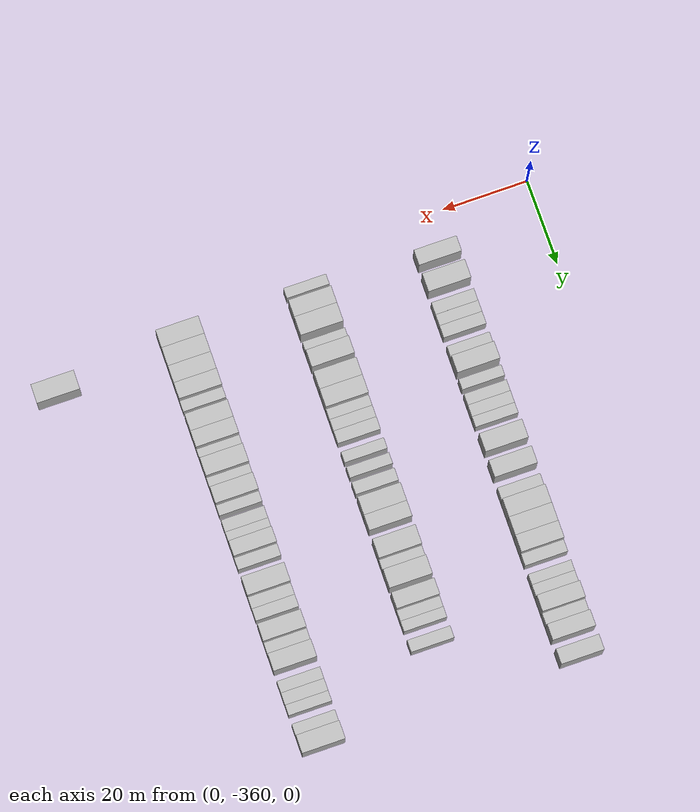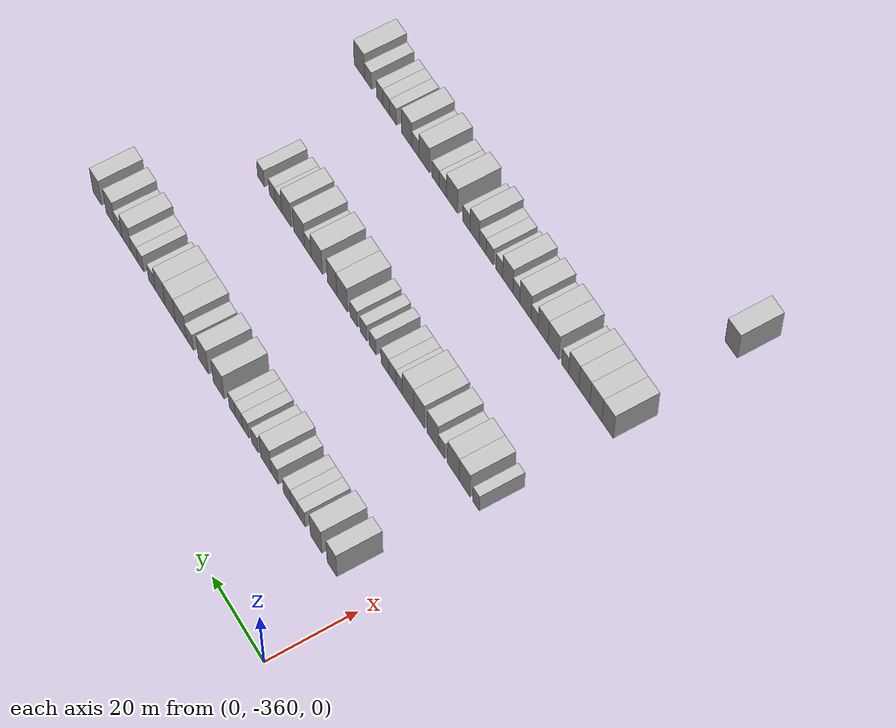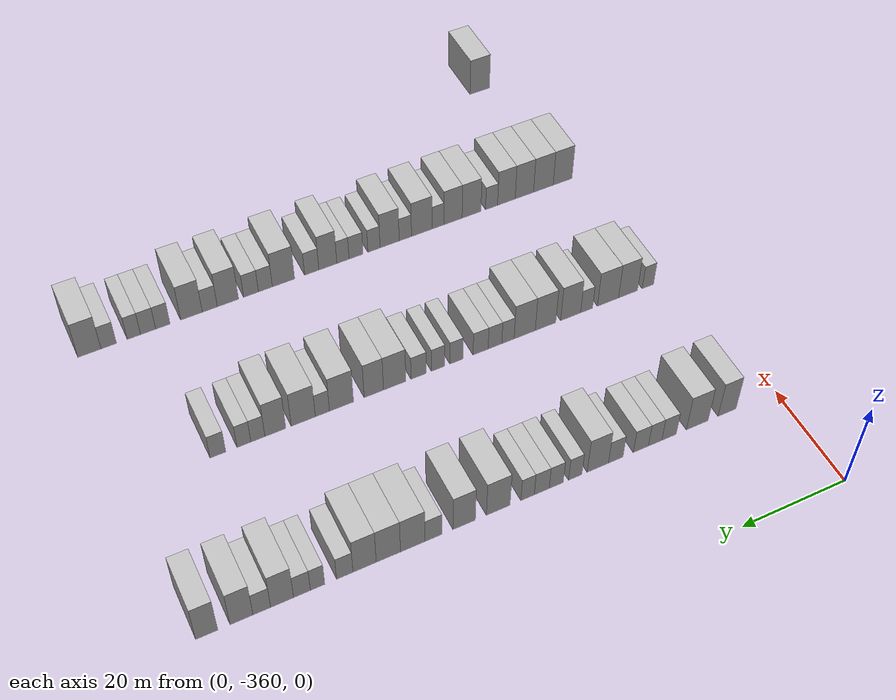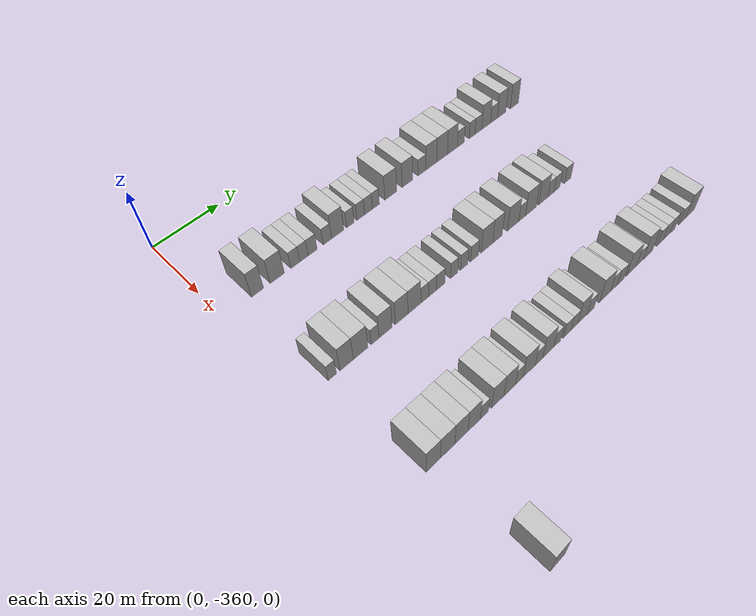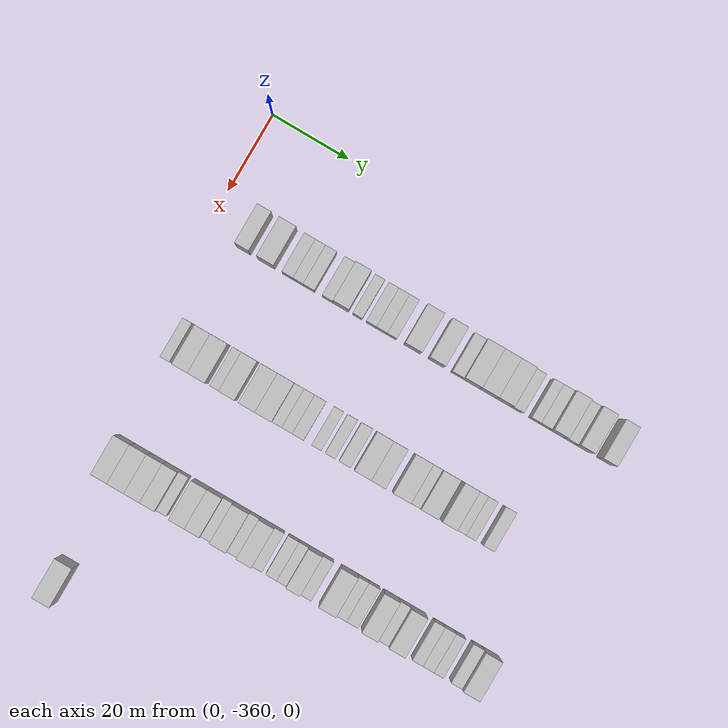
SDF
<sdf version="1.6">
 <world name="default">
  <model name="building_28">
   <static>1</static>
   <pose>25.0000 -350.0129 0 0.000000 0.000000 0.000000</pose>
   <link name="link">
    <pose>0 0 4.50 0 0 0</pose>
    <collision name="collision"><geometry><box><size>10.0000 3.6251 9.0000</size></box></geometry></collision>
    <visual name="visual">
     <cast_shadows>0</cast_shadows>
     <geometry><box><size>10.0000 3.6251 9.0000</size></box></geometry>
     <material>
      <script>
       <uri>model://HANNAS_wall/materials/scripts</uri>
       <uri>model://HANNAS_wall/materials/textures</uri>
       <name>vrc/HANNAS_wall</name>
      </script>
     </material>
    </visual>
   </link>
  </model>
  <model name="building_29">
   <static>1</static>
   <pose>25.0000 -344.0259 0 0.000000 0.000000 0.000000</pose>
   <link name="link">
    <pose>0 0 4.50 0 0 0</pose>
    <collision name="collision"><geometry><box><size>10.0000 4.3489 9.0000</size></box></geometry></collision>
    <visual name="visual">
     <cast_shadows>0</cast_shadows>
     <geometry><box><size>10.0000 4.3489 9.0000</size></box></geometry>
     <material>
      <script>
       <uri>model://HANNAS_wall/materials/scripts</uri>
       <uri>model://HANNAS_wall/materials/textures</uri>
       <name>vrc/HANNAS_wall</name>
      </script>
     </material>
    </visual>
   </link>
  </model>
  <model name="building_30">
   <static>1</static>
   <pose>25.0000 -338.4252 0 0.000000 0.000000 0.000000</pose>
   <link name="link">
    <pose>0 0 3.00 0 0 0</pose>
    <collision name="collision"><geometry><box><size>10.0000 2.8525 6.0000</size></box></geometry></collision>
    <visual name="visual">
     <cast_shadows>0</cast_shadows>
     <geometry><box><size>10.0000 2.8525 6.0000</size></box></geometry>
     <material>
      <script>
       <uri>model://HANNAS_wall/materials/scripts</uri>
       <uri>model://HANNAS_wall/materials/textures</uri>
       <name>vrc/HANNAS_wall</name>
      </script>
     </material>
    </visual>
   </link>
  </model>
  <model name="building_31">
   <static>1</static>
   <pose>25.0000 -335.6791 0 0.000000 0.000000 0.000000</pose>
   <link name="link">
    <pose>0 0 3.00 0 0 0</pose>
    <collision name="collision"><geometry><box><size>10.0000 2.6395 6.0000</size></box></geometry></collision>
    <visual name="visual">
     <cast_shadows>0</cast_shadows>
     <geometry><box><size>10.0000 2.6395 6.0000</size></box></geometry>
     <material>
      <script>
       <uri>model://HANNAS_wall/materials/scripts</uri>
       <uri>model://HANNAS_wall/materials/textures</uri>
       <name>vrc/HANNAS_wall</name>
      </script>
     </material>
    </visual>
   </link>
  </model>
  <model name="building_32">
   <static>1</static>
   <pose>25.0000 -332.9013 0 0.000000 0.000000 0.000000</pose>
   <link name="link">
    <pose>0 0 3.00 0 0 0</pose>
    <collision name="collision"><geometry><box><size>10.0000 2.9161 6.0000</size></box></geometry></collision>
    <visual name="visual">
     <cast_shadows>0</cast_shadows>
     <geometry><box><size>10.0000 2.9161 6.0000</size></box></geometry>
     <material>
      <script>
       <uri>model://HANNAS_wall/materials/scripts</uri>
       <uri>model://HANNAS_wall/materials/textures</uri>
       <name>vrc/HANNAS_wall</name>
      </script>
     </material>
    </visual>
   </link>
  </model>
  <model name="building_33">
   <static>1</static>
   <pose>25.0000 -328.0461 0 0.000000 0.000000 0.000000</pose>
   <link name="link">
    <pose>0 0 3.00 0 0 0</pose>
    <collision name="collision"><geometry><box><size>10.0000 2.7944 6.0000</size></box></geometry></collision>
    <visual name="visual">
     <cast_shadows>0</cast_shadows>
     <geometry><box><size>10.0000 2.7944 6.0000</size></box></geometry>
     <material>
      <script>
       <uri>model://HANNAS_wall/materials/scripts</uri>
       <uri>model://HANNAS_wall/materials/textures</uri>
       <name>vrc/HANNAS_wall</name>
      </script>
     </material>
    </visual>
   </link>
  </model>
  <model name="building_34">
   <static>1</static>
   <pose>25.0000 -324.6168 0 0.000000 0.000000 0.000000</pose>
   <link name="link">
    <pose>0 0 4.50 0 0 0</pose>
    <collision name="collision"><geometry><box><size>10.0000 4.0642 9.0000</size></box></geometry></collision>
    <visual name="visual">
     <cast_shadows>0</cast_shadows>
     <geometry><box><size>10.0000 4.0642 9.0000</size></box></geometry>
     <material>
      <script>
       <uri>model://HANNAS_wall/materials/scripts</uri>
       <uri>model://HANNAS_wall/materials/textures</uri>
       <name>vrc/HANNAS_wall</name>
      </script>
     </material>
    </visual>
   </link>
  </model>
  <model name="building_35">
   <static>1</static>
   <pose>25.0000 -320.3229 0 0.000000 0.000000 0.000000</pose>
   <link name="link">
    <pose>0 0 3.00 0 0 0</pose>
    <collision name="collision"><geometry><box><size>10.0000 2.5237 6.0000</size></box></geometry></collision>
    <visual name="visual">
     <cast_shadows>0</cast_shadows>
     <geometry><box><size>10.0000 2.5237 6.0000</size></box></geometry>
     <material>
      <script>
       <uri>model://HANNAS_wall/materials/scripts</uri>
       <uri>model://HANNAS_wall/materials/textures</uri>
       <name>vrc/HANNAS_wall</name>
      </script>
     </material>
    </visual>
   </link>
  </model>
  <model name="building_36">
   <static>1</static>
   <pose>25.0000 -316.7487 0 0.000000 0.000000 0.000000</pose>
   <link name="link">
    <pose>0 0 3.00 0 0 0</pose>
    <collision name="collision"><geometry><box><size>10.0000 2.6246 6.0000</size></box></geometry></collision>
    <visual name="visual">
     <cast_shadows>0</cast_shadows>
     <geometry><box><size>10.0000 2.6246 6.0000</size></box></geometry>
     <material>
      <script>
       <uri>model://HANNAS_wall/materials/scripts</uri>
       <uri>model://HANNAS_wall/materials/textures</uri>
       <name>vrc/HANNAS_wall</name>
      </script>
     </material>
    </visual>
   </link>
  </model>
  <model name="building_37">
   <static>1</static>
   <pose>25.0000 -314.0464 0 0.000000 0.000000 0.000000</pose>
   <link name="link">
    <pose>0 0 3.00 0 0 0</pose>
    <collision name="collision"><geometry><box><size>10.0000 2.7800 6.0000</size></box></geometry></collision>
    <visual name="visual">
     <cast_shadows>0</cast_shadows>
     <geometry><box><size>10.0000 2.7800 6.0000</size></box></geometry>
     <material>
      <script>
       <uri>model://HANNAS_wall/materials/scripts</uri>
       <uri>model://HANNAS_wall/materials/textures</uri>
       <name>vrc/HANNAS_wall</name>
      </script>
     </material>
    </visual>
   </link>
  </model>
  <model name="building_38">
   <static>1</static>
   <pose>25.0000 -311.4103 0 0.000000 0.000000 0.000000</pose>
   <link name="link">
    <pose>0 0 3.00 0 0 0</pose>
    <collision name="collision"><geometry><box><size>10.0000 2.4922 6.0000</size></box></geometry></collision>
    <visual name="visual">
     <cast_shadows>0</cast_shadows>
     <geometry><box><size>10.0000 2.4922 6.0000</size></box></geometry>
     <material>
      <script>
       <uri>model://HANNAS_wall/materials/scripts</uri>
       <uri>model://HANNAS_wall/materials/textures</uri>
       <name>vrc/HANNAS_wall</name>
      </script>
     </material>
    </visual>
   </link>
  </model>
  <model name="building_39">
   <static>1</static>
   <pose>25.0000 -306.0003 0 0.000000 0.000000 0.000000</pose>
   <link name="link">
    <pose>0 0 4.50 0 0 0</pose>
    <collision name="collision"><geometry><box><size>10.0000 4.3278 9.0000</size></box></geometry></collision>
    <visual name="visual">
     <cast_shadows>0</cast_shadows>
     <geometry><box><size>10.0000 4.3278 9.0000</size></box></geometry>
     <material>
      <script>
       <uri>model://HANNAS_wall/materials/scripts</uri>
       <uri>model://HANNAS_wall/materials/textures</uri>
       <name>vrc/HANNAS_wall</name>
      </script>
     </material>
    </visual>
   </link>
  </model>
  <model name="building_40">
   <static>1</static>
   <pose>25.0000 -299.8229 0 0.000000 0.000000 0.000000</pose>
   <link name="link">
    <pose>0 0 4.50 0 0 0</pose>
    <collision name="collision"><geometry><box><size>10.0000 4.0270 9.0000</size></box></geometry></collision>
    <visual name="visual">
     <cast_shadows>0</cast_shadows>
     <geometry><box><size>10.0000 4.0270 9.0000</size></box></geometry>
     <material>
      <script>
       <uri>model://HANNAS_wall/materials/scripts</uri>
       <uri>model://HANNAS_wall/materials/textures</uri>
       <name>vrc/HANNAS_wall</name>
      </script>
     </material>
    </visual>
   </link>
  </model>
  <model name="building_41">
   <static>1</static>
   <pose>25.0000 -294.3111 0 0.000000 0.000000 0.000000</pose>
   <link name="link">
    <pose>0 0 3.00 0 0 0</pose>
    <collision name="collision"><geometry><box><size>10.0000 2.9968 6.0000</size></box></geometry></collision>
    <visual name="visual">
     <cast_shadows>0</cast_shadows>
     <geometry><box><size>10.0000 2.9968 6.0000</size></box></geometry>
     <material>
      <script>
       <uri>model://HANNAS_wall/materials/scripts</uri>
       <uri>model://HANNAS_wall/materials/textures</uri>
       <name>vrc/HANNAS_wall</name>
      </script>
     </material>
    </visual>
   </link>
  </model>
  <model name="building_42">
   <static>1</static>
   <pose>25.0000 -290.6540 0 0.000000 0.000000 0.000000</pose>
   <link name="link">
    <pose>0 0 4.50 0 0 0</pose>
    <collision name="collision"><geometry><box><size>10.0000 4.3174 9.0000</size></box></geometry></collision>
    <visual name="visual">
     <cast_shadows>0</cast_shadows>
     <geometry><box><size>10.0000 4.3174 9.0000</size></box></geometry>
     <material>
      <script>
       <uri>model://HANNAS_wall/materials/scripts</uri>
       <uri>model://HANNAS_wall/materials/textures</uri>
       <name>vrc/HANNAS_wall</name>
      </script>
     </material>
    </visual>
   </link>
  </model>
  <model name="building_43">
   <static>1</static>
   <pose>25.0000 -286.3703 0 0.000000 0.000000 0.000000</pose>
   <link name="link">
    <pose>0 0 4.50 0 0 0</pose>
    <collision name="collision"><geometry><box><size>10.0000 4.2500 9.0000</size></box></geometry></collision>
    <visual name="visual">
     <cast_shadows>0</cast_shadows>
     <geometry><box><size>10.0000 4.2500 9.0000</size></box></geometry>
     <material>
      <script>
       <uri>model://HANNAS_wall/materials/scripts</uri>
       <uri>model://HANNAS_wall/materials/textures</uri>
       <name>vrc/HANNAS_wall</name>
      </script>
     </material>
    </visual>
   </link>
  </model>
  <model name="building_44">
   <static>1</static>
   <pose>25.0000 -282.2408 0 0.000000 0.000000 0.000000</pose>
   <link name="link">
    <pose>0 0 4.50 0 0 0</pose>
    <collision name="collision"><geometry><box><size>10.0000 4.0090 9.0000</size></box></geometry></collision>
    <visual name="visual">
     <cast_shadows>0</cast_shadows>
     <geometry><box><size>10.0000 4.0090 9.0000</size></box></geometry>
     <material>
      <script>
       <uri>model://HANNAS_wall/materials/scripts</uri>
       <uri>model://HANNAS_wall/materials/textures</uri>
       <name>vrc/HANNAS_wall</name>
      </script>
     </material>
    </visual>
   </link>
  </model>
  <model name="building_45">
   <static>1</static>
   <pose>25.0000 -278.8270 0 0.000000 0.000000 0.000000</pose>
   <link name="link">
    <pose>0 0 3.00 0 0 0</pose>
    <collision name="collision"><geometry><box><size>10.0000 2.8187 6.0000</size></box></geometry></collision>
    <visual name="visual">
     <cast_shadows>0</cast_shadows>
     <geometry><box><size>10.0000 2.8187 6.0000</size></box></geometry>
     <material>
      <script>
       <uri>model://HANNAS_wall/materials/scripts</uri>
       <uri>model://HANNAS_wall/materials/textures</uri>
       <name>vrc/HANNAS_wall</name>
      </script>
     </material>
    </visual>
   </link>
  </model>
  <model name="building_46">
   <static>1</static>
   <pose>25.0000 -274.2003 0 0.000000 0.000000 0.000000</pose>
   <link name="link">
    <pose>0 0 3.00 0 0 0</pose>
    <collision name="collision"><geometry><box><size>10.0000 2.4347 6.0000</size></box></geometry></collision>
    <visual name="visual">
     <cast_shadows>0</cast_shadows>
     <geometry><box><size>10.0000 2.4347 6.0000</size></box></geometry>
     <material>
      <script>
       <uri>model://HANNAS_wall/materials/scripts</uri>
       <uri>model://HANNAS_wall/materials/textures</uri>
       <name>vrc/HANNAS_wall</name>
      </script>
     </material>
    </visual>
   </link>
  </model>
  <model name="building_47">
   <static>1</static>
   <pose>25.0000 -271.5685 0 0.000000 0.000000 0.000000</pose>
   <link name="link">
    <pose>0 0 3.00 0 0 0</pose>
    <collision name="collision"><geometry><box><size>10.0000 2.8289 6.0000</size></box></geometry></collision>
    <visual name="visual">
     <cast_shadows>0</cast_shadows>
     <geometry><box><size>10.0000 2.8289 6.0000</size></box></geometry>
     <material>
      <script>
       <uri>model://HANNAS_wall/materials/scripts</uri>
       <uri>model://HANNAS_wall/materials/textures</uri>
       <name>vrc/HANNAS_wall</name>
      </script>
     </material>
    </visual>
   </link>
  </model>
  <model name="building_48">
   <static>1</static>
   <pose>25.0000 -268.2330 0 0.000000 0.000000 0.000000</pose>
   <link name="link">
    <pose>0 0 4.50 0 0 0</pose>
    <collision name="collision"><geometry><box><size>10.0000 3.8420 9.0000</size></box></geometry></collision>
    <visual name="visual">
     <cast_shadows>0</cast_shadows>
     <geometry><box><size>10.0000 3.8420 9.0000</size></box></geometry>
     <material>
      <script>
       <uri>model://HANNAS_wall/materials/scripts</uri>
       <uri>model://HANNAS_wall/materials/textures</uri>
       <name>vrc/HANNAS_wall</name>
      </script>
     </material>
    </visual>
   </link>
  </model>
  <model name="building_49">
   <static>1</static>
   <pose>25.0000 -264.8440 0 0.000000 0.000000 0.000000</pose>
   <link name="link">
    <pose>0 0 3.00 0 0 0</pose>
    <collision name="collision"><geometry><box><size>10.0000 2.9360 6.0000</size></box></geometry></collision>
    <visual name="visual">
     <cast_shadows>0</cast_shadows>
     <geometry><box><size>10.0000 2.9360 6.0000</size></box></geometry>
     <material>
      <script>
       <uri>model://HANNAS_wall/materials/scripts</uri>
       <uri>model://HANNAS_wall/materials/textures</uri>
       <name>vrc/HANNAS_wall</name>
      </script>
     </material>
    </visual>
   </link>
  </model>
  <model name="building_50">
   <static>1</static>
   <pose>25.0000 -261.4907 0 0.000000 0.000000 0.000000</pose>
   <link name="link">
    <pose>0 0 4.50 0 0 0</pose>
    <collision name="collision"><geometry><box><size>10.0000 3.7706 9.0000</size></box></geometry></collision>
    <visual name="visual">
     <cast_shadows>0</cast_shadows>
     <geometry><box><size>10.0000 3.7706 9.0000</size></box></geometry>
     <material>
      <script>
       <uri>model://HANNAS_wall/materials/scripts</uri>
       <uri>model://HANNAS_wall/materials/textures</uri>
       <name>vrc/HANNAS_wall</name>
      </script>
     </material>
    </visual>
   </link>
  </model>
  <model name="building_51">
   <static>1</static>
   <pose>25.0000 -255.8040 0 0.000000 0.000000 0.000000</pose>
   <link name="link">
    <pose>0 0 4.50 0 0 0</pose>
    <collision name="collision"><geometry><box><size>10.0000 3.6027 9.0000</size></box></geometry></collision>
    <visual name="visual">
     <cast_shadows>0</cast_shadows>
     <geometry><box><size>10.0000 3.6027 9.0000</size></box></geometry>
     <material>
      <script>
       <uri>model://HANNAS_wall/materials/scripts</uri>
       <uri>model://HANNAS_wall/materials/textures</uri>
       <name>vrc/HANNAS_wall</name>
      </script>
     </material>
    </visual>
   </link>
  </model>
  <model name="building_248">
   <static>1</static>
   <pose>55.0000 -352.4674 0 0.000000 0.000000 0.000000</pose>
   <link name="link">
    <pose>0 0 3.00 0 0 0</pose>
    <collision name="collision"><geometry><box><size>10.0000 2.4110 6.0000</size></box></geometry></collision>
    <visual name="visual">
     <cast_shadows>0</cast_shadows>
     <geometry><box><size>10.0000 2.4110 6.0000</size></box></geometry>
     <material>
      <script>
       <uri>model://HANNAS_wall/materials/scripts</uri>
       <uri>model://HANNAS_wall/materials/textures</uri>
       <name>vrc/HANNAS_wall</name>
      </script>
     </material>
    </visual>
   </link>
  </model>
  <model name="building_249">
   <static>1</static>
   <pose>55.0000 -348.2635 0 0.000000 0.000000 0.000000</pose>
   <link name="link">
    <pose>0 0 4.50 0 0 0</pose>
    <collision name="collision"><geometry><box><size>10.0000 3.9969 9.0000</size></box></geometry></collision>
    <visual name="visual">
     <cast_shadows>0</cast_shadows>
     <geometry><box><size>10.0000 3.9969 9.0000</size></box></geometry>
     <material>
      <script>
       <uri>model://HANNAS_wall/materials/scripts</uri>
       <uri>model://HANNAS_wall/materials/textures</uri>
       <name>vrc/HANNAS_wall</name>
      </script>
     </material>
    </visual>
   </link>
  </model>
  <model name="building_250">
   <static>1</static>
   <pose>55.0000 -344.0564 0 0.000000 0.000000 0.000000</pose>
   <link name="link">
    <pose>0 0 4.50 0 0 0</pose>
    <collision name="collision"><geometry><box><size>10.0000 4.4171 9.0000</size></box></geometry></collision>
    <visual name="visual">
     <cast_shadows>0</cast_shadows>
     <geometry><box><size>10.0000 4.4171 9.0000</size></box></geometry>
     <material>
      <script>
       <uri>model://HANNAS_wall/materials/scripts</uri>
       <uri>model://HANNAS_wall/materials/textures</uri>
       <name>vrc/HANNAS_wall</name>
      </script>
     </material>
    </visual>
   </link>
  </model>
  <model name="building_251">
   <static>1</static>
   <pose>55.0000 -339.6115 0 0.000000 0.000000 0.000000</pose>
   <link name="link">
    <pose>0 0 3.00 0 0 0</pose>
    <collision name="collision"><geometry><box><size>10.0000 2.4727 6.0000</size></box></geometry></collision>
    <visual name="visual">
     <cast_shadows>0</cast_shadows>
     <geometry><box><size>10.0000 2.4727 6.0000</size></box></geometry>
     <material>
      <script>
       <uri>model://HANNAS_wall/materials/scripts</uri>
       <uri>model://HANNAS_wall/materials/textures</uri>
       <name>vrc/HANNAS_wall</name>
      </script>
     </material>
    </visual>
   </link>
  </model>
  <model name="building_252">
   <static>1</static>
   <pose>55.0000 -336.3242 0 0.000000 0.000000 0.000000</pose>
   <link name="link">
    <pose>0 0 4.50 0 0 0</pose>
    <collision name="collision"><geometry><box><size>10.0000 4.1019 9.0000</size></box></geometry></collision>
    <visual name="visual">
     <cast_shadows>0</cast_shadows>
     <geometry><box><size>10.0000 4.1019 9.0000</size></box></geometry>
     <material>
      <script>
       <uri>model://HANNAS_wall/materials/scripts</uri>
       <uri>model://HANNAS_wall/materials/textures</uri>
       <name>vrc/HANNAS_wall</name>
      </script>
     </material>
    </visual>
   </link>
  </model>
  <model name="building_253">
   <static>1</static>
   <pose>55.0000 -331.1877 0 0.000000 0.000000 0.000000</pose>
   <link name="link">
    <pose>0 0 4.50 0 0 0</pose>
    <collision name="collision"><geometry><box><size>10.0000 4.1712 9.0000</size></box></geometry></collision>
    <visual name="visual">
     <cast_shadows>0</cast_shadows>
     <geometry><box><size>10.0000 4.1712 9.0000</size></box></geometry>
     <material>
      <script>
       <uri>model://HANNAS_wall/materials/scripts</uri>
       <uri>model://HANNAS_wall/materials/textures</uri>
       <name>vrc/HANNAS_wall</name>
      </script>
     </material>
    </visual>
   </link>
  </model>
  <model name="building_254">
   <static>1</static>
   <pose>55.0000 -326.9685 0 0.000000 0.000000 0.000000</pose>
   <link name="link">
    <pose>0 0 4.50 0 0 0</pose>
    <collision name="collision"><geometry><box><size>10.0000 4.2670 9.0000</size></box></geometry></collision>
    <visual name="visual">
     <cast_shadows>0</cast_shadows>
     <geometry><box><size>10.0000 4.2670 9.0000</size></box></geometry>
     <material>
      <script>
       <uri>model://HANNAS_wall/materials/scripts</uri>
       <uri>model://HANNAS_wall/materials/textures</uri>
       <name>vrc/HANNAS_wall</name>
      </script>
     </material>
    </visual>
   </link>
  </model>
  <model name="building_255">
   <static>1</static>
   <pose>55.0000 -323.6012 0 0.000000 0.000000 0.000000</pose>
   <link name="link">
    <pose>0 0 3.00 0 0 0</pose>
    <collision name="collision"><geometry><box><size>10.0000 2.4678 6.0000</size></box></geometry></collision>
    <visual name="visual">
     <cast_shadows>0</cast_shadows>
     <geometry><box><size>10.0000 2.4678 6.0000</size></box></geometry>
     <material>
      <script>
       <uri>model://HANNAS_wall/materials/scripts</uri>
       <uri>model://HANNAS_wall/materials/textures</uri>
       <name>vrc/HANNAS_wall</name>
      </script>
     </material>
    </visual>
   </link>
  </model>
  <model name="building_256">
   <static>1</static>
   <pose>55.0000 -321.0097 0 0.000000 0.000000 0.000000</pose>
   <link name="link">
    <pose>0 0 3.00 0 0 0</pose>
    <collision name="collision"><geometry><box><size>10.0000 2.7152 6.0000</size></box></geometry></collision>
    <visual name="visual">
     <cast_shadows>0</cast_shadows>
     <geometry><box><size>10.0000 2.7152 6.0000</size></box></geometry>
     <material>
      <script>
       <uri>model://HANNAS_wall/materials/scripts</uri>
       <uri>model://HANNAS_wall/materials/textures</uri>
       <name>vrc/HANNAS_wall</name>
      </script>
     </material>
    </visual>
   </link>
  </model>
  <model name="building_257">
   <static>1</static>
   <pose>55.0000 -318.1588 0 0.000000 0.000000 0.000000</pose>
   <link name="link">
    <pose>0 0 3.00 0 0 0</pose>
    <collision name="collision"><geometry><box><size>10.0000 2.9866 6.0000</size></box></geometry></collision>
    <visual name="visual">
     <cast_shadows>0</cast_shadows>
     <geometry><box><size>10.0000 2.9866 6.0000</size></box></geometry>
     <material>
      <script>
       <uri>model://HANNAS_wall/materials/scripts</uri>
       <uri>model://HANNAS_wall/materials/textures</uri>
       <name>vrc/HANNAS_wall</name>
      </script>
     </material>
    </visual>
   </link>
  </model>
  <model name="building_258">
   <static>1</static>
   <pose>55.0000 -313.3982 0 0.000000 0.000000 0.000000</pose>
   <link name="link">
    <pose>0 0 3.00 0 0 0</pose>
    <collision name="collision"><geometry><box><size>10.0000 2.5346 6.0000</size></box></geometry></collision>
    <visual name="visual">
     <cast_shadows>0</cast_shadows>
     <geometry><box><size>10.0000 2.5346 6.0000</size></box></geometry>
     <material>
      <script>
       <uri>model://HANNAS_wall/materials/scripts</uri>
       <uri>model://HANNAS_wall/materials/textures</uri>
       <name>vrc/HANNAS_wall</name>
      </script>
     </material>
    </visual>
   </link>
  </model>
  <model name="building_259">
   <static>1</static>
   <pose>55.0000 -309.8338 0 0.000000 0.000000 0.000000</pose>
   <link name="link">
    <pose>0 0 3.00 0 0 0</pose>
    <collision name="collision"><geometry><box><size>10.0000 2.5942 6.0000</size></box></geometry></collision>
    <visual name="visual">
     <cast_shadows>0</cast_shadows>
     <geometry><box><size>10.0000 2.5942 6.0000</size></box></geometry>
     <material>
      <script>
       <uri>model://HANNAS_wall/materials/scripts</uri>
       <uri>model://HANNAS_wall/materials/textures</uri>
       <name>vrc/HANNAS_wall</name>
      </script>
     </material>
    </visual>
   </link>
  </model>
  <model name="building_260">
   <static>1</static>
   <pose>55.0000 -306.0665 0 0.000000 0.000000 0.000000</pose>
   <link name="link">
    <pose>0 0 3.00 0 0 0</pose>
    <collision name="collision"><geometry><box><size>10.0000 2.9404 6.0000</size></box></geometry></collision>
    <visual name="visual">
     <cast_shadows>0</cast_shadows>
     <geometry><box><size>10.0000 2.9404 6.0000</size></box></geometry>
     <material>
      <script>
       <uri>model://HANNAS_wall/materials/scripts</uri>
       <uri>model://HANNAS_wall/materials/textures</uri>
       <name>vrc/HANNAS_wall</name>
      </script>
     </material>
    </visual>
   </link>
  </model>
  <model name="building_261">
   <static>1</static>
   <pose>55.0000 -301.4670 0 0.000000 0.000000 0.000000</pose>
   <link name="link">
    <pose>0 0 4.50 0 0 0</pose>
    <collision name="collision"><geometry><box><size>10.0000 4.2585 9.0000</size></box></geometry></collision>
    <visual name="visual">
     <cast_shadows>0</cast_shadows>
     <geometry><box><size>10.0000 4.2585 9.0000</size></box></geometry>
     <material>
      <script>
       <uri>model://HANNAS_wall/materials/scripts</uri>
       <uri>model://HANNAS_wall/materials/textures</uri>
       <name>vrc/HANNAS_wall</name>
      </script>
     </material>
    </visual>
   </link>
  </model>
  <model name="building_262">
   <static>1</static>
   <pose>55.0000 -297.5092 0 0.000000 0.000000 0.000000</pose>
   <link name="link">
    <pose>0 0 4.50 0 0 0</pose>
    <collision name="collision"><geometry><box><size>10.0000 3.6571 9.0000</size></box></geometry></collision>
    <visual name="visual">
     <cast_shadows>0</cast_shadows>
     <geometry><box><size>10.0000 3.6571 9.0000</size></box></geometry>
     <material>
      <script>
       <uri>model://HANNAS_wall/materials/scripts</uri>
       <uri>model://HANNAS_wall/materials/textures</uri>
       <name>vrc/HANNAS_wall</name>
      </script>
     </material>
    </visual>
   </link>
  </model>
  <model name="building_263">
   <static>1</static>
   <pose>55.0000 -291.4414 0 0.000000 0.000000 0.000000</pose>
   <link name="link">
    <pose>0 0 4.50 0 0 0</pose>
    <collision name="collision"><geometry><box><size>10.0000 4.4786 9.0000</size></box></geometry></collision>
    <visual name="visual">
     <cast_shadows>0</cast_shadows>
     <geometry><box><size>10.0000 4.4786 9.0000</size></box></geometry>
     <material>
      <script>
       <uri>model://HANNAS_wall/materials/scripts</uri>
       <uri>model://HANNAS_wall/materials/textures</uri>
       <name>vrc/HANNAS_wall</name>
      </script>
     </material>
    </visual>
   </link>
  </model>
  <model name="building_264">
   <static>1</static>
   <pose>55.0000 -287.8946 0 0.000000 0.000000 0.000000</pose>
   <link name="link">
    <pose>0 0 3.00 0 0 0</pose>
    <collision name="collision"><geometry><box><size>10.0000 2.6149 6.0000</size></box></geometry></collision>
    <visual name="visual">
     <cast_shadows>0</cast_shadows>
     <geometry><box><size>10.0000 2.6149 6.0000</size></box></geometry>
     <material>
      <script>
       <uri>model://HANNAS_wall/materials/scripts</uri>
       <uri>model://HANNAS_wall/materials/textures</uri>
       <name>vrc/HANNAS_wall</name>
      </script>
     </material>
    </visual>
   </link>
  </model>
  <model name="building_265">
   <static>1</static>
   <pose>55.0000 -284.3714 0 0.000000 0.000000 0.000000</pose>
   <link name="link">
    <pose>0 0 4.50 0 0 0</pose>
    <collision name="collision"><geometry><box><size>10.0000 4.4314 9.0000</size></box></geometry></collision>
    <visual name="visual">
     <cast_shadows>0</cast_shadows>
     <geometry><box><size>10.0000 4.4314 9.0000</size></box></geometry>
     <material>
      <script>
       <uri>model://HANNAS_wall/materials/scripts</uri>
       <uri>model://HANNAS_wall/materials/textures</uri>
       <name>vrc/HANNAS_wall</name>
      </script>
     </material>
    </visual>
   </link>
  </model>
  <model name="building_266">
   <static>1</static>
   <pose>55.0000 -279.2587 0 0.000000 0.000000 0.000000</pose>
   <link name="link">
    <pose>0 0 4.50 0 0 0</pose>
    <collision name="collision"><geometry><box><size>10.0000 3.7939 9.0000</size></box></geometry></collision>
    <visual name="visual">
     <cast_shadows>0</cast_shadows>
     <geometry><box><size>10.0000 3.7939 9.0000</size></box></geometry>
     <material>
      <script>
       <uri>model://HANNAS_wall/materials/scripts</uri>
       <uri>model://HANNAS_wall/materials/textures</uri>
       <name>vrc/HANNAS_wall</name>
      </script>
     </material>
    </visual>
   </link>
  </model>
  <model name="building_267">
   <static>1</static>
   <pose>55.0000 -276.0948 0 0.000000 0.000000 0.000000</pose>
   <link name="link">
    <pose>0 0 3.00 0 0 0</pose>
    <collision name="collision"><geometry><box><size>10.0000 2.5339 6.0000</size></box></geometry></collision>
    <visual name="visual">
     <cast_shadows>0</cast_shadows>
     <geometry><box><size>10.0000 2.5339 6.0000</size></box></geometry>
     <material>
      <script>
       <uri>model://HANNAS_wall/materials/scripts</uri>
       <uri>model://HANNAS_wall/materials/textures</uri>
       <name>vrc/HANNAS_wall</name>
      </script>
     </material>
    </visual>
   </link>
  </model>
  <model name="building_268">
   <static>1</static>
   <pose>55.0000 -273.5876 0 0.000000 0.000000 0.000000</pose>
   <link name="link">
    <pose>0 0 3.00 0 0 0</pose>
    <collision name="collision"><geometry><box><size>10.0000 2.4806 6.0000</size></box></geometry></collision>
    <visual name="visual">
     <cast_shadows>0</cast_shadows>
     <geometry><box><size>10.0000 2.4806 6.0000</size></box></geometry>
     <material>
      <script>
       <uri>model://HANNAS_wall/materials/scripts</uri>
       <uri>model://HANNAS_wall/materials/textures</uri>
       <name>vrc/HANNAS_wall</name>
      </script>
     </material>
    </visual>
   </link>
  </model>
  <model name="building_269">
   <static>1</static>
   <pose>55.0000 -268.9467 0 0.000000 0.000000 0.000000</pose>
   <link name="link">
    <pose>0 0 3.00 0 0 0</pose>
    <collision name="collision"><geometry><box><size>10.0000 2.8012 6.0000</size></box></geometry></collision>
    <visual name="visual">
     <cast_shadows>0</cast_shadows>
     <geometry><box><size>10.0000 2.8012 6.0000</size></box></geometry>
     <material>
      <script>
       <uri>model://HANNAS_wall/materials/scripts</uri>
       <uri>model://HANNAS_wall/materials/textures</uri>
       <name>vrc/HANNAS_wall</name>
      </script>
     </material>
    </visual>
   </link>
  </model>
  <model name="building_464">
   <static>1</static>
   <pose>85.0000 -351.3925 0 0.000000 0.000000 0.000000</pose>
   <link name="link">
    <pose>0 0 4.50 0 0 0</pose>
    <collision name="collision"><geometry><box><size>10.0000 4.1527 9.0000</size></box></geometry></collision>
    <visual name="visual">
     <cast_shadows>0</cast_shadows>
     <geometry><box><size>10.0000 4.1527 9.0000</size></box></geometry>
     <material>
      <script>
       <uri>model://HANNAS_wall/materials/scripts</uri>
       <uri>model://HANNAS_wall/materials/textures</uri>
       <name>vrc/HANNAS_wall</name>
      </script>
     </material>
    </visual>
   </link>
  </model>
  <model name="building_465">
   <static>1</static>
   <pose>85.0000 -347.1531 0 0.000000 0.000000 0.000000</pose>
   <link name="link">
    <pose>0 0 4.50 0 0 0</pose>
    <collision name="collision"><geometry><box><size>10.0000 4.3261 9.0000</size></box></geometry></collision>
    <visual name="visual">
     <cast_shadows>0</cast_shadows>
     <geometry><box><size>10.0000 4.3261 9.0000</size></box></geometry>
     <material>
      <script>
       <uri>model://HANNAS_wall/materials/scripts</uri>
       <uri>model://HANNAS_wall/materials/textures</uri>
       <name>vrc/HANNAS_wall</name>
      </script>
     </material>
    </visual>
   </link>
  </model>
  <model name="building_466">
   <static>1</static>
   <pose>85.0000 -342.9874 0 0.000000 0.000000 0.000000</pose>
   <link name="link">
    <pose>0 0 4.50 0 0 0</pose>
    <collision name="collision"><geometry><box><size>10.0000 4.0052 9.0000</size></box></geometry></collision>
    <visual name="visual">
     <cast_shadows>0</cast_shadows>
     <geometry><box><size>10.0000 4.0052 9.0000</size></box></geometry>
     <material>
      <script>
       <uri>model://HANNAS_wall/materials/scripts</uri>
       <uri>model://HANNAS_wall/materials/textures</uri>
       <name>vrc/HANNAS_wall</name>
      </script>
     </material>
    </visual>
   </link>
  </model>
  <model name="building_467">
   <static>1</static>
   <pose>85.0000 -339.0748 0 0.000000 0.000000 0.000000</pose>
   <link name="link">
    <pose>0 0 4.50 0 0 0</pose>
    <collision name="collision"><geometry><box><size>10.0000 3.8201 9.0000</size></box></geometry></collision>
    <visual name="visual">
     <cast_shadows>0</cast_shadows>
     <geometry><box><size>10.0000 3.8201 9.0000</size></box></geometry>
     <material>
      <script>
       <uri>model://HANNAS_wall/materials/scripts</uri>
       <uri>model://HANNAS_wall/materials/textures</uri>
       <name>vrc/HANNAS_wall</name>
      </script>
     </material>
    </visual>
   </link>
  </model>
  <model name="building_468">
   <static>1</static>
   <pose>85.0000 -335.8769 0 0.000000 0.000000 0.000000</pose>
   <link name="link">
    <pose>0 0 3.00 0 0 0</pose>
    <collision name="collision"><geometry><box><size>10.0000 2.5756 6.0000</size></box></geometry></collision>
    <visual name="visual">
     <cast_shadows>0</cast_shadows>
     <geometry><box><size>10.0000 2.5756 6.0000</size></box></geometry>
     <material>
      <script>
       <uri>model://HANNAS_wall/materials/scripts</uri>
       <uri>model://HANNAS_wall/materials/textures</uri>
       <name>vrc/HANNAS_wall</name>
      </script>
     </material>
    </visual>
   </link>
  </model>
  <model name="building_469">
   <static>1</static>
   <pose>85.0000 -331.5856 0 0.000000 0.000000 0.000000</pose>
   <link name="link">
    <pose>0 0 4.50 0 0 0</pose>
    <collision name="collision"><geometry><box><size>10.0000 4.0070 9.0000</size></box></geometry></collision>
    <visual name="visual">
     <cast_shadows>0</cast_shadows>
     <geometry><box><size>10.0000 4.0070 9.0000</size></box></geometry>
     <material>
      <script>
       <uri>model://HANNAS_wall/materials/scripts</uri>
       <uri>model://HANNAS_wall/materials/textures</uri>
       <name>vrc/HANNAS_wall</name>
      </script>
     </material>
    </visual>
   </link>
  </model>
  <model name="building_470">
   <static>1</static>
   <pose>85.0000 -327.6525 0 0.000000 0.000000 0.000000</pose>
   <link name="link">
    <pose>0 0 4.50 0 0 0</pose>
    <collision name="collision"><geometry><box><size>10.0000 3.8591 9.0000</size></box></geometry></collision>
    <visual name="visual">
     <cast_shadows>0</cast_shadows>
     <geometry><box><size>10.0000 3.8591 9.0000</size></box></geometry>
     <material>
      <script>
       <uri>model://HANNAS_wall/materials/scripts</uri>
       <uri>model://HANNAS_wall/materials/textures</uri>
       <name>vrc/HANNAS_wall</name>
      </script>
     </material>
    </visual>
   </link>
  </model>
  <model name="building_471">
   <static>1</static>
   <pose>85.0000 -324.4754 0 0.000000 0.000000 0.000000</pose>
   <link name="link">
    <pose>0 0 3.00 0 0 0</pose>
    <collision name="collision"><geometry><box><size>10.0000 2.4951 6.0000</size></box></geometry></collision>
    <visual name="visual">
     <cast_shadows>0</cast_shadows>
     <geometry><box><size>10.0000 2.4951 6.0000</size></box></geometry>
     <material>
      <script>
       <uri>model://HANNAS_wall/materials/scripts</uri>
       <uri>model://HANNAS_wall/materials/textures</uri>
       <name>vrc/HANNAS_wall</name>
      </script>
     </material>
    </visual>
   </link>
  </model>
  <model name="building_472">
   <static>1</static>
   <pose>85.0000 -321.0881 0 0.000000 0.000000 0.000000</pose>
   <link name="link">
    <pose>0 0 4.50 0 0 0</pose>
    <collision name="collision"><geometry><box><size>10.0000 4.2794 9.0000</size></box></geometry></collision>
    <visual name="visual">
     <cast_shadows>0</cast_shadows>
     <geometry><box><size>10.0000 4.2794 9.0000</size></box></geometry>
     <material>
      <script>
       <uri>model://HANNAS_wall/materials/scripts</uri>
       <uri>model://HANNAS_wall/materials/textures</uri>
       <name>vrc/HANNAS_wall</name>
      </script>
     </material>
    </visual>
   </link>
  </model>
  <model name="building_473">
   <static>1</static>
   <pose>85.0000 -317.6653 0 0.000000 0.000000 0.000000</pose>
   <link name="link">
    <pose>0 0 3.00 0 0 0</pose>
    <collision name="collision"><geometry><box><size>10.0000 2.5664 6.0000</size></box></geometry></collision>
    <visual name="visual">
     <cast_shadows>0</cast_shadows>
     <geometry><box><size>10.0000 2.5664 6.0000</size></box></geometry>
     <material>
      <script>
       <uri>model://HANNAS_wall/materials/scripts</uri>
       <uri>model://HANNAS_wall/materials/textures</uri>
       <name>vrc/HANNAS_wall</name>
      </script>
     </material>
    </visual>
   </link>
  </model>
  <model name="building_474">
   <static>1</static>
   <pose>85.0000 -314.4150 0 0.000000 0.000000 0.000000</pose>
   <link name="link">
    <pose>0 0 4.50 0 0 0</pose>
    <collision name="collision"><geometry><box><size>10.0000 3.9341 9.0000</size></box></geometry></collision>
    <visual name="visual">
     <cast_shadows>0</cast_shadows>
     <geometry><box><size>10.0000 3.9341 9.0000</size></box></geometry>
     <material>
      <script>
       <uri>model://HANNAS_wall/materials/scripts</uri>
       <uri>model://HANNAS_wall/materials/textures</uri>
       <name>vrc/HANNAS_wall</name>
      </script>
     </material>
    </visual>
   </link>
  </model>
  <model name="building_475">
   <static>1</static>
   <pose>85.0000 -311.2026 0 0.000000 0.000000 0.000000</pose>
   <link name="link">
    <pose>0 0 3.00 0 0 0</pose>
    <collision name="collision"><geometry><box><size>10.0000 2.4906 6.0000</size></box></geometry></collision>
    <visual name="visual">
     <cast_shadows>0</cast_shadows>
     <geometry><box><size>10.0000 2.4906 6.0000</size></box></geometry>
     <material>
      <script>
       <uri>model://HANNAS_wall/materials/scripts</uri>
       <uri>model://HANNAS_wall/materials/textures</uri>
       <name>vrc/HANNAS_wall</name>
      </script>
     </material>
    </visual>
   </link>
  </model>
  <model name="building_476">
   <static>1</static>
   <pose>85.0000 -307.5436 0 0.000000 0.000000 0.000000</pose>
   <link name="link">
    <pose>0 0 3.00 0 0 0</pose>
    <collision name="collision"><geometry><box><size>10.0000 2.8273 6.0000</size></box></geometry></collision>
    <visual name="visual">
     <cast_shadows>0</cast_shadows>
     <geometry><box><size>10.0000 2.8273 6.0000</size></box></geometry>
     <material>
      <script>
       <uri>model://HANNAS_wall/materials/scripts</uri>
       <uri>model://HANNAS_wall/materials/textures</uri>
       <name>vrc/HANNAS_wall</name>
      </script>
     </material>
    </visual>
   </link>
  </model>
  <model name="building_477">
   <static>1</static>
   <pose>85.0000 -304.8948 0 0.000000 0.000000 0.000000</pose>
   <link name="link">
    <pose>0 0 3.00 0 0 0</pose>
    <collision name="collision"><geometry><box><size>10.0000 2.4703 6.0000</size></box></geometry></collision>
    <visual name="visual">
     <cast_shadows>0</cast_shadows>
     <geometry><box><size>10.0000 2.4703 6.0000</size></box></geometry>
     <material>
      <script>
       <uri>model://HANNAS_wall/materials/scripts</uri>
       <uri>model://HANNAS_wall/materials/textures</uri>
       <name>vrc/HANNAS_wall</name>
      </script>
     </material>
    </visual>
   </link>
  </model>
  <model name="building_478">
   <static>1</static>
   <pose>85.0000 -301.8560 0 0.000000 0.000000 0.000000</pose>
   <link name="link">
    <pose>0 0 4.50 0 0 0</pose>
    <collision name="collision"><geometry><box><size>10.0000 3.6073 9.0000</size></box></geometry></collision>
    <visual name="visual">
     <cast_shadows>0</cast_shadows>
     <geometry><box><size>10.0000 3.6073 9.0000</size></box></geometry>
     <material>
      <script>
       <uri>model://HANNAS_wall/materials/scripts</uri>
       <uri>model://HANNAS_wall/materials/textures</uri>
       <name>vrc/HANNAS_wall</name>
      </script>
     </material>
    </visual>
   </link>
  </model>
  <model name="building_479">
   <static>1</static>
   <pose>85.0000 -298.6341 0 0.000000 0.000000 0.000000</pose>
   <link name="link">
    <pose>0 0 3.00 0 0 0</pose>
    <collision name="collision"><geometry><box><size>10.0000 2.8365 6.0000</size></box></geometry></collision>
    <visual name="visual">
     <cast_shadows>0</cast_shadows>
     <geometry><box><size>10.0000 2.8365 6.0000</size></box></geometry>
     <material>
      <script>
       <uri>model://HANNAS_wall/materials/scripts</uri>
       <uri>model://HANNAS_wall/materials/textures</uri>
       <name>vrc/HANNAS_wall</name>
      </script>
     </material>
    </visual>
   </link>
  </model>
  <model name="building_480">
   <static>1</static>
   <pose>85.0000 -293.0283 0 0.000000 0.000000 0.000000</pose>
   <link name="link">
    <pose>0 0 4.50 0 0 0</pose>
    <collision name="collision"><geometry><box><size>10.0000 4.3752 9.0000</size></box></geometry></collision>
    <visual name="visual">
     <cast_shadows>0</cast_shadows>
     <geometry><box><size>10.0000 4.3752 9.0000</size></box></geometry>
     <material>
      <script>
       <uri>model://HANNAS_wall/materials/scripts</uri>
       <uri>model://HANNAS_wall/materials/textures</uri>
       <name>vrc/HANNAS_wall</name>
      </script>
     </material>
    </visual>
   </link>
  </model>
  <model name="building_481">
   <static>1</static>
   <pose>85.0000 -289.4690 0 0.000000 0.000000 0.000000</pose>
   <link name="link">
    <pose>0 0 3.00 0 0 0</pose>
    <collision name="collision"><geometry><box><size>10.0000 2.7433 6.0000</size></box></geometry></collision>
    <visual name="visual">
     <cast_shadows>0</cast_shadows>
     <geometry><box><size>10.0000 2.7433 6.0000</size></box></geometry>
     <material>
      <script>
       <uri>model://HANNAS_wall/materials/scripts</uri>
       <uri>model://HANNAS_wall/materials/textures</uri>
       <name>vrc/HANNAS_wall</name>
      </script>
     </material>
    </visual>
   </link>
  </model>
  <model name="building_482">
   <static>1</static>
   <pose>85.0000 -286.6646 0 0.000000 0.000000 0.000000</pose>
   <link name="link">
    <pose>0 0 3.00 0 0 0</pose>
    <collision name="collision"><geometry><box><size>10.0000 2.8656 6.0000</size></box></geometry></collision>
    <visual name="visual">
     <cast_shadows>0</cast_shadows>
     <geometry><box><size>10.0000 2.8656 6.0000</size></box></geometry>
     <material>
      <script>
       <uri>model://HANNAS_wall/materials/scripts</uri>
       <uri>model://HANNAS_wall/materials/textures</uri>
       <name>vrc/HANNAS_wall</name>
      </script>
     </material>
    </visual>
   </link>
  </model>
  <model name="building_483">
   <static>1</static>
   <pose>85.0000 -282.1894 0 0.000000 0.000000 0.000000</pose>
   <link name="link">
    <pose>0 0 4.50 0 0 0</pose>
    <collision name="collision"><geometry><box><size>10.0000 4.0847 9.0000</size></box></geometry></collision>
    <visual name="visual">
     <cast_shadows>0</cast_shadows>
     <geometry><box><size>10.0000 4.0847 9.0000</size></box></geometry>
     <material>
      <script>
       <uri>model://HANNAS_wall/materials/scripts</uri>
       <uri>model://HANNAS_wall/materials/textures</uri>
       <name>vrc/HANNAS_wall</name>
      </script>
     </material>
    </visual>
   </link>
  </model>
  <model name="building_484">
   <static>1</static>
   <pose>85.0000 -278.7085 0 0.000000 0.000000 0.000000</pose>
   <link name="link">
    <pose>0 0 3.00 0 0 0</pose>
    <collision name="collision"><geometry><box><size>10.0000 2.8771 6.0000</size></box></geometry></collision>
    <visual name="visual">
     <cast_shadows>0</cast_shadows>
     <geometry><box><size>10.0000 2.8771 6.0000</size></box></geometry>
     <material>
      <script>
       <uri>model://HANNAS_wall/materials/scripts</uri>
       <uri>model://HANNAS_wall/materials/textures</uri>
       <name>vrc/HANNAS_wall</name>
      </script>
     </material>
    </visual>
   </link>
  </model>
  <model name="building_485">
   <static>1</static>
   <pose>85.0000 -275.2128 0 0.000000 0.000000 0.000000</pose>
   <link name="link">
    <pose>0 0 4.50 0 0 0</pose>
    <collision name="collision"><geometry><box><size>10.0000 4.1144 9.0000</size></box></geometry></collision>
    <visual name="visual">
     <cast_shadows>0</cast_shadows>
     <geometry><box><size>10.0000 4.1144 9.0000</size></box></geometry>
     <material>
      <script>
       <uri>model://HANNAS_wall/materials/scripts</uri>
       <uri>model://HANNAS_wall/materials/textures</uri>
       <name>vrc/HANNAS_wall</name>
      </script>
     </material>
    </visual>
   </link>
  </model>
  <model name="building_486">
   <static>1</static>
   <pose>85.0000 -269.8025 0 0.000000 0.000000 0.000000</pose>
   <link name="link">
    <pose>0 0 3.00 0 0 0</pose>
    <collision name="collision"><geometry><box><size>10.0000 2.7062 6.0000</size></box></geometry></collision>
    <visual name="visual">
     <cast_shadows>0</cast_shadows>
     <geometry><box><size>10.0000 2.7062 6.0000</size></box></geometry>
     <material>
      <script>
       <uri>model://HANNAS_wall/materials/scripts</uri>
       <uri>model://HANNAS_wall/materials/textures</uri>
       <name>vrc/HANNAS_wall</name>
      </script>
     </material>
    </visual>
   </link>
  </model>
  <model name="building_487">
   <static>1</static>
   <pose>85.0000 -267.0326 0 0.000000 0.000000 0.000000</pose>
   <link name="link">
    <pose>0 0 3.00 0 0 0</pose>
    <collision name="collision"><geometry><box><size>10.0000 2.8337 6.0000</size></box></geometry></collision>
    <visual name="visual">
     <cast_shadows>0</cast_shadows>
     <geometry><box><size>10.0000 2.8337 6.0000</size></box></geometry>
     <material>
      <script>
       <uri>model://HANNAS_wall/materials/scripts</uri>
       <uri>model://HANNAS_wall/materials/textures</uri>
       <name>vrc/HANNAS_wall</name>
      </script>
     </material>
    </visual>
   </link>
  </model>
  <model name="building_488">
   <static>1</static>
   <pose>85.0000 -264.3854 0 0.000000 0.000000 0.000000</pose>
   <link name="link">
    <pose>0 0 3.00 0 0 0</pose>
    <collision name="collision"><geometry><box><size>10.0000 2.4606 6.0000</size></box></geometry></collision>
    <visual name="visual">
     <cast_shadows>0</cast_shadows>
     <geometry><box><size>10.0000 2.4606 6.0000</size></box></geometry>
     <material>
      <script>
       <uri>model://HANNAS_wall/materials/scripts</uri>
       <uri>model://HANNAS_wall/materials/textures</uri>
       <name>vrc/HANNAS_wall</name>
      </script>
     </material>
    </visual>
   </link>
  </model>
  <model name="building_489">
   <static>1</static>
   <pose>85.0000 -259.7349 0 0.000000 0.000000 0.000000</pose>
   <link name="link">
    <pose>0 0 3.00 0 0 0</pose>
    <collision name="collision"><geometry><box><size>10.0000 2.8404 6.0000</size></box></geometry></collision>
    <visual name="visual">
     <cast_shadows>0</cast_shadows>
     <geometry><box><size>10.0000 2.8404 6.0000</size></box></geometry>
     <material>
      <script>
       <uri>model://HANNAS_wall/materials/scripts</uri>
       <uri>model://HANNAS_wall/materials/textures</uri>
       <name>vrc/HANNAS_wall</name>
      </script>
     </material>
    </visual>
   </link>
  </model>
  <model name="building_490">
   <static>1</static>
   <pose>85.0000 -256.1931 0 0.000000 0.000000 0.000000</pose>
   <link name="link">
    <pose>0 0 4.50 0 0 0</pose>
    <collision name="collision"><geometry><box><size>10.0000 4.2432 9.0000</size></box></geometry></collision>
    <visual name="visual">
     <cast_shadows>0</cast_shadows>
     <geometry><box><size>10.0000 4.2432 9.0000</size></box></geometry>
     <material>
      <script>
       <uri>model://HANNAS_wall/materials/scripts</uri>
       <uri>model://HANNAS_wall/materials/textures</uri>
       <name>vrc/HANNAS_wall</name>
      </script>
     </material>
    </visual>
   </link>
  </model>
  <model name="building_697">
   <static>1</static>
   <pose>115.0000 -348.6966 0 0.000000 0.000000 0.000000</pose>
   <link name="link">
    <pose>0 0 4.50 0 0 0</pose>
    <collision name="collision"><geometry><box><size>10.0000 4.4591 9.0000</size></box></geometry></collision>
    <visual name="visual">
     <cast_shadows>0</cast_shadows>
     <geometry><box><size>10.0000 4.4591 9.0000</size></box></geometry>
     <material>
      <script>
       <uri>model://HANNAS_wall/materials/scripts</uri>
       <uri>model://HANNAS_wall/materials/textures</uri>
       <name>vrc/HANNAS_wall</name>
      </script>
     </material>
    </visual>
   </link>
  </model>
 </world>
</sdf>
